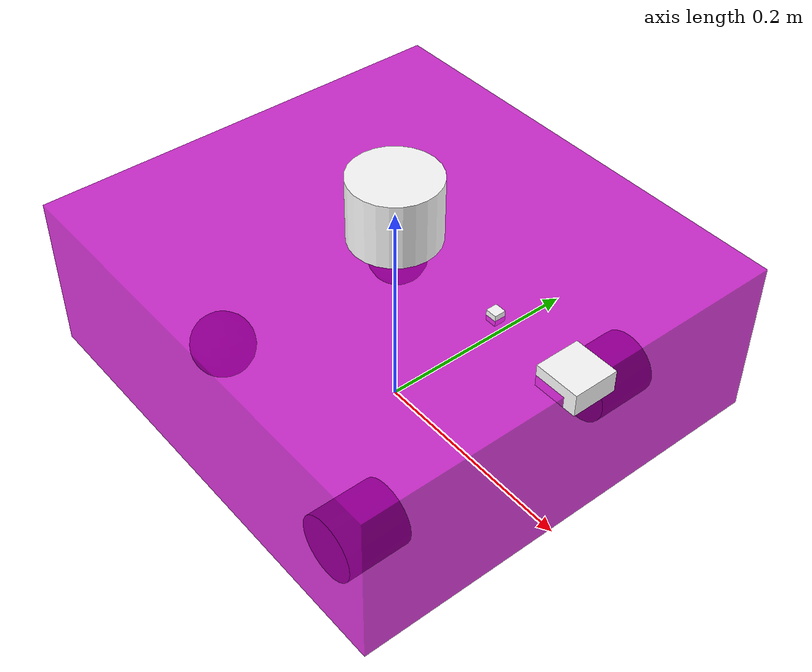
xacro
<?xml version="1.0"?>
<robot name="mybot" xmlns:xacro="http://ros.org/wiki/xacro">

  <xacro:include filename="head.xacro" />
  <xacro:include filename="$(find fuxi_nav_fake)/urdf/mybot.gazebo_ekf.xacro" />
  <xacro:property name="PI" value="3.14159265"/>

   <!-- 底盘属性 -->
    <xacro:property name="base_link_length" value="0.4275" /> <!-- base_link 长 -->
    <xacro:property name="base_link_width" value="0.40" /> <!-- base_link 宽 -->
    <xacro:property name="base_link_height" value="0.148" /> <!-- base_link 高 -->
    <xacro:property name="earth_space" value="0.03" /> <!-- 离地间距 -->
    <xacro:property name="wheel_space" value="0.269" /> <!-- 轮间距 -->

    <!-- 驱动轮属性 -->
    <xacro:property name="wheel_radius" value="0.03" /><!-- 半径 -->
    <xacro:property name="wheel_length" value="0.06" /><!-- 宽度 -->

    <!-- 支撑轮属性 -->
    <xacro:property name="support_wheel_radius" value="0.03" /> <!-- 支撑轮半径 -->
    <xacro:property name="support_wheel_space" value="0.2" /> <!-- 支撑轮间距 -->

  <link name="base_footprint"/>

  <joint name="base_joint" type="fixed">
    <parent link="base_footprint"/>
    <child link="base_link"/>
    <origin rpy="0 0 0" xyz="0 0 ${earth_space + base_link_height / 2 }"/>
  </joint>

  <link name="base_link">

    <xacro:Box_inertial_matrix m="3.5" w="${base_link_width}" l="${base_link_length}" h="${base_link_height}"/>

    <visual>
      <geometry>
        <box size="${base_link_length} ${base_link_width} ${base_link_height}"/>
      </geometry>
      <origin rpy="0 0 0" xyz="0 0 0"/>
      <material name="blue">
          <color rgba="0.8 0 0.8 0.8"/>
      </material>
    </visual>

   <collision>
     <origin xyz="0 0 0" rpy="0 0 0"/>
     <geometry>
       <box size="${base_link_length} ${wheel_space - wheel_length - 0.02} ${base_link_height}"/>
     </geometry>
   </collision>

  </link>

  <link name="right_wheel_link">

    <xacro:cylinder_inertial_matrix m="0.5" r="${wheel_radius}" h="${wheel_length}" />

    <visual>
      <geometry>
        <cylinder length="${wheel_length}" radius="${wheel_radius}"/>
      </geometry>
      <material name="black">
        <color rgba="0 0 0 1"/>
      </material>
    </visual>

    <collision>
     <origin xyz="0 0 0" rpy="0 0 0"/>
     <geometry>
       <cylinder length="${wheel_length}" radius="${wheel_radius}"/>
     </geometry>
    </collision>
  </link>

  <joint name="right_wheel_joint" type="continuous">
    <axis xyz="0 0 -1"/>
    <parent link="base_link"/>
    <child link="right_wheel_link"/>
    <origin rpy="${PI/2} 0 0" xyz=" 0.12 ${-wheel_space/2} ${-(earth_space + base_link_height / 2 - wheel_radius) }"/>
    <dynamics damping="0.8"/>
  </joint>

  <link name="left_wheel_link">

    <xacro:cylinder_inertial_matrix m="0.15" r="${wheel_radius}" h="${wheel_length}" />

    <visual>
      <geometry>
        <cylinder length="${wheel_length}" radius="${wheel_radius}"/>
      </geometry>
      <material name="black">
        <color rgba="0 0 0 1"/>
      </material>
    </visual>

    <collision>
     <origin xyz="0 0 0" rpy="0 0 0"/>
     <geometry>
       <cylinder length="${wheel_length}" radius="${wheel_radius}"/>
     </geometry>
    </collision>
  </link>

  <joint name="left_wheel_joint" type="continuous">
    <axis xyz="0 0 -1"/>
    <parent link="base_link"/>
    <child link="left_wheel_link"/>
    <origin rpy="${PI/2} 0 0" xyz=" 0.12 ${wheel_space/2} ${-(earth_space + base_link_height / 2 - wheel_radius) }"/>
    <dynamics damping="0.8"/>
  </joint>

  <link name="ball_wheel_link_right">

    <xacro:sphere_inertial_matrix m="0.5" r="${support_wheel_radius}" />

    <visual>
      <geometry>
        <sphere radius="${support_wheel_radius}"/>
      </geometry>
      <material name="black">
        <color rgba="0 0 0 1"/>
      </material>
    </visual>

    <collision>
     <origin xyz="0 0 0" rpy="0 0 0"/>
     <geometry>
       <sphere radius="${support_wheel_radius}"/>
     </geometry>
    </collision>
  </link>

  <joint name="ball_wheel_joint_right" type="fixed">
    <axis xyz="0 0 0"/>
    <parent link="base_link"/>
    <child link="ball_wheel_link_right"/>
    <origin rpy="0 0 0" xyz="-0.12 ${-support_wheel_space / 2} ${-(earth_space + base_link_height / 2 - support_wheel_radius) }"/>
  </joint>

  <link name="ball_wheel_link_left">

    <xacro:sphere_inertial_matrix m="0.5" r="${support_wheel_radius}" />

    <visual>
      <geometry>
        <sphere radius="${support_wheel_radius}"/>
      </geometry>
      <material name="black">
        <color rgba="0 0 0 1"/>
      </material>
    </visual>

    <collision>
     <origin xyz="0 0 0" rpy="0 0 0"/>
     <geometry>
       <sphere radius="${support_wheel_radius}"/>
     </geometry>
    </collision>
  </link>

  <joint name="ball_wheel_joint_left" type="fixed">
    <axis xyz=" 0 0 0"/>
    <parent link="base_link"/>
    <child link="ball_wheel_link_left"/>
    <origin rpy="0 0 0" xyz="-0.12 ${support_wheel_space / 2} ${-(earth_space + base_link_height / 2 - support_wheel_radius) }"/>
  </joint>

  <!-- imu sensor -->
  <link name="imu">
    <visual>
      <geometry>
        <box size="0.01 0.01 0.01"/>
      </geometry>
      <material name="white">
          <color rgba="1 1 1 1"/>
      </material>
    </visual>
  </link>

  <joint name="imu_joint" type="fixed">
    <parent link="base_link"/>
    <child link="imu"/>
    <origin xyz="0.12 0 ${base_link_height / 2}"/>
  </joint>

  <!-- camera -->
  <link name="base_camera_link">
    <visual>
      <geometry>
        <box size="0.04 0.04 0.02"/>
      </geometry>
      <material name="white">
          <color rgba="1 1 1 1"/>
      </material>
    </visual>
  </link>

  <joint name="camera_joint" type="fixed">
    <parent link="base_link"/>
    <child link="base_camera_link"/>
    <origin rpy="0 0 1.57" xyz="0.205 0 ${base_link_height / 2}"/>
  </joint>

  <!-- laser lidar -->
  <link name="base_laser_link">
    <visual>
      <geometry>
        <cylinder length="0.06" radius="0.04"/>
      </geometry>
      <material name="white">
          <color rgba="1 1 1 1"/>
      </material>
    </visual>
  </link>

  <joint name="laser_joint" type="fixed">
    <parent link="base_link"/>
    <child link="base_laser_link"/>
    <origin xyz="0 0.0 ${base_link_height / 2 + 0.03}"/>
  </joint>

</robot>

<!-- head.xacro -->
<robot name="base" xmlns:xacro="http://wiki.ros.org/xacro">
    <!-- Macro for inertia matrix -->
    <xacro:macro name="sphere_inertial_matrix" params="m r">
        <inertial>
            <mass value="${m}" />
            <inertia ixx="${2*m*r*r/5}" ixy="0" ixz="0"
                iyy="${2*m*r*r/5}" iyz="0"
                izz="${2*m*r*r/5}" />
        </inertial>
    </xacro:macro>

    <xacro:macro name="cylinder_inertial_matrix" params="m r h">
        <inertial>
            <mass value="${m}" />
            <inertia ixx="${m*(3*r*r+h*h)/12}" ixy = "0" ixz = "0"
                iyy="${m*(3*r*r+h*h)/12}" iyz = "0"
                izz="${m*r*r/2}" />
        </inertial>
    </xacro:macro>

    <xacro:macro name="Box_inertial_matrix" params="m l w h">
       <inertial>
               <mass value="${m}" />
               <inertia ixx="${m*(h*h + l*l)/12}" ixy = "0" ixz = "0"
                   iyy="${m*(w*w + l*l)/12}" iyz= "0"
                   izz="${m*(w*w + h*h)/12}" />
       </inertial>
   </xacro:macro>
</robot>
